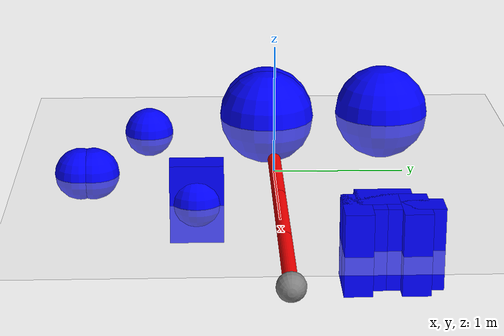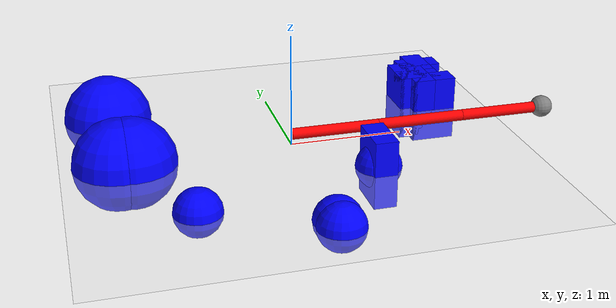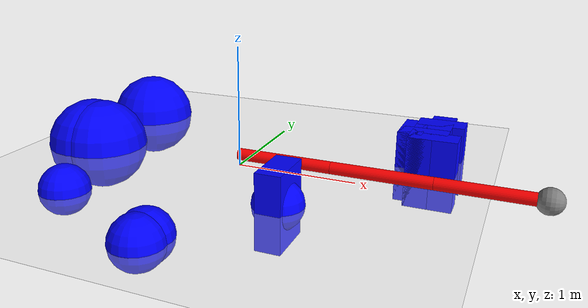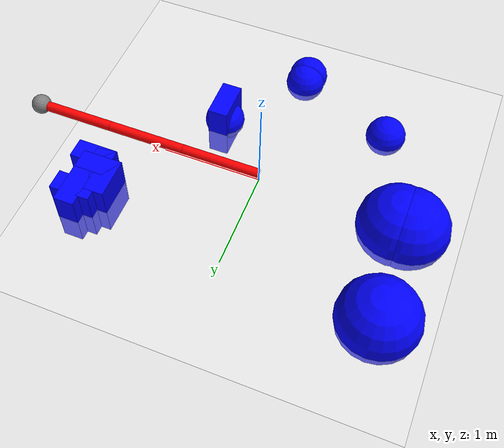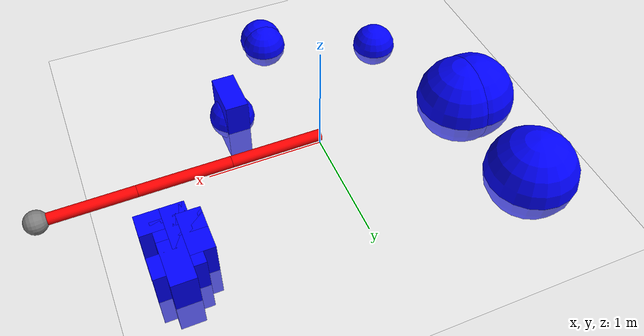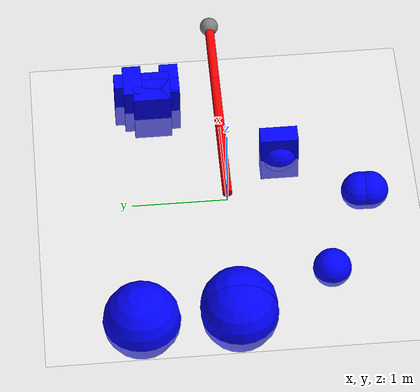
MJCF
<mujoco>
	<asset>
		<material name="red"   rgba="1 0 0 1"/>
		<material name="green" rgba="0 1 0 1"/>
		<material name="blue"  rgba="0 0 1 1"/>
		<material name="white" rgba="1 1 1 1"/>
		<material name="gray"  rgba=".5 .5 .5 1"/>
	</asset>

    <option collision="predefined"/>

    <worldbody>
        <light diffuse=".5 .5 .5" pos="0 0 10" dir="0 0 -1"/>
        <geom type="plane" size="2 2 0.1" rgba="1 1 1 1"/>

        <body name="edge 0" pos="0.4 0 0.1" euler="0 90 0">
            <joint name="joint 0" type="hinge" axis="-1 0 0" pos="0 0 -0.4"/>
            <geom name="geom edge 0" type="cylinder" size="0.05 0.4" material="red"/>
            <body name="edge 1" pos="0 0 0.8" euler="0 0 0">
                <joint name="joint 1" type="hinge" axis="-1 0 0" pos="0 0 -0.4"/>
                <geom name="geom edge 1" type="cylinder" size="0.05 0.4" material="red"/>
                <body name="edge 2" pos="0 0 0.8" euler="0 0 0">
                    <joint name="joint 2" type="hinge" axis="-1 0 0" pos="0 0 -0.4"/>
                    <geom name="geom edge 2" type="cylinder" size="0.05 0.4" material="red"/>
                    <site name="tip" size="0.1" pos="0 0 0.4"/>
                </body>
            </body>
        </body>

        <body name="edge 0 shade" pos="0.4 0 0.1" euler="0 90 0">
            <joint name="joint 0 shade" type="hinge" axis="-1 0 0" pos="0 0 -0.4"/>
            <geom name="geom edge 0 shade" type="cylinder" size="0.05 0.4" material="green"/>
            <body name="edge 1 shade" pos="0 0 0.8" euler="0 0 0">
                <joint name="joint 1 shade" type="hinge" axis="-1 0 0" pos="0 0 -0.4"/>
                <geom name="geom edge 1 shade" type="cylinder" size="0.05 0.4" material="green"/>
                <body name="edge 2 shade" pos="0 0 0.8" euler="0 0 0">
                    <joint name="joint 2 shade" type="hinge" axis="-1 0 0" pos="0 0 -0.4"/>
                    <geom name="geom edge 2 shade" type="cylinder" size="0.05 0.4" material="green"/>
                </body>
            </body>
        </body>

        <body name="obstacle 0">
            <geom name="geom obstacle 0" type="box" size="0.1 0.2 0.3" pos="1.5 0.9 0.0" material="blue"/>
        </body>
        <body name="obstacle 1">
            <geom name="geom obstacle 1" type="sphere" size="0.2" pos="0.0 -1.5 0.0" material="blue"/>
        </body>
        <body name="obstacle 2">
            <geom name="geom obstacle 2" type="sphere" size="0.4" pos="-1.5 0.0 0.0" material="blue"/>
        </body>
        <body name="obstacle 3">
            <geom name="geom obstacle 3" type="box" size="0.2 0.1 0.3" pos="1.5 0.9 0.0" material="blue"/>
        </body>
        <body name="obstacle 4">
            <geom name="geom obstacle 4" type="box" size="0.1 0.2 0.3" pos="1.3 0.7 0.0" material="blue"/>
        </body>
        <body name="obstacle 5">
            <geom name="geom obstacle 5" type="sphere" size="0.2" pos="0.0 -1.4 0.0" material="blue"/>
        </body>
        <body name="obstacle 6">
            <geom name="geom obstacle 6" type="sphere" size="0.4" pos="-1.4 0.0 0.0" material="blue"/>
        </body>
        <body name="obstacle 7">
            <geom name="geom obstacle 7" type="box" size="0.2 0.1 0.3" pos="1.4 0.6 0.0" material="blue"/>
        </body>
        <body name="obstacle 8">
            <geom name="geom obstacle 8" type="box" size="0.1 0.2 0.3" pos="0.6 -0.6 0.0" material="blue"/>
        </body>
        <body name="obstacle 9">
            <geom name="geom obstacle 9" type="sphere" size="0.2" pos="-1.0 -1.0 0.0" material="blue"/>
        </body>
        <body name="obstacle 10">
            <geom name="geom obstacle 10" type="sphere" size="0.4" pos="-1.5 1.0 0.0" material="blue"/>
        </body>
        <body name="obstacle 11">
            <geom name="geom obstacle 11" type="box" size="0.2 0.1 0.3" pos="1.5 0.5 0.0" material="blue"/>
        </body>
        <body name="obstacle 12">
            <geom name="geom obstacle 12" type="box" size="0.1 0.2 0.3" pos="1.4 0.6 0.0" material="blue"/>
        </body>
        <body name="obstacle 13">
            <geom name="geom obstacle 13" type="sphere" size="0.2" pos="0.6 -0.6 0.0" material="blue"/>
        </body>
        <body name="obstacle 14">
            <geom name="geom obstacle 14" type="sphere" size="0.4" pos="-1.4 0.0 0.0" material="blue"/>
        </body>
        <body name="obstacle 15">
            <geom name="geom obstacle 15" type="box" size="0.2 0.1 0.3" pos="1.4 0.6 0.0" material="blue"/>
        </body>

    </worldbody>

    <contact>
        <pair geom1="geom edge 0" geom2="geom obstacle 0"/>
        <pair geom1="geom edge 0" geom2="geom obstacle 1"/>
        <pair geom1="geom edge 0" geom2="geom obstacle 2"/>
        <pair geom1="geom edge 0" geom2="geom obstacle 3"/>
        <pair geom1="geom edge 0" geom2="geom obstacle 4"/>
        <pair geom1="geom edge 0" geom2="geom obstacle 5"/>
        <pair geom1="geom edge 0" geom2="geom obstacle 6"/>
        <pair geom1="geom edge 0" geom2="geom obstacle 7"/>
        <pair geom1="geom edge 0" geom2="geom obstacle 8"/>
        <pair geom1="geom edge 0" geom2="geom obstacle 9"/>
        <pair geom1="geom edge 0" geom2="geom obstacle 10"/>
        <pair geom1="geom edge 0" geom2="geom obstacle 11"/>
        <pair geom1="geom edge 0" geom2="geom obstacle 12"/>
        <pair geom1="geom edge 0" geom2="geom obstacle 13"/>
        <pair geom1="geom edge 0" geom2="geom obstacle 14"/>
        <pair geom1="geom edge 0" geom2="geom obstacle 15"/>
        <pair geom1="geom edge 1" geom2="geom obstacle 0"/>
        <pair geom1="geom edge 1" geom2="geom obstacle 1"/>
        <pair geom1="geom edge 1" geom2="geom obstacle 2"/>
        <pair geom1="geom edge 1" geom2="geom obstacle 3"/>
        <pair geom1="geom edge 1" geom2="geom obstacle 4"/>
        <pair geom1="geom edge 1" geom2="geom obstacle 5"/>
        <pair geom1="geom edge 1" geom2="geom obstacle 6"/>
        <pair geom1="geom edge 1" geom2="geom obstacle 7"/>
        <pair geom1="geom edge 1" geom2="geom obstacle 8"/>
        <pair geom1="geom edge 1" geom2="geom obstacle 9"/>
        <pair geom1="geom edge 1" geom2="geom obstacle 10"/>
        <pair geom1="geom edge 1" geom2="geom obstacle 11"/>
        <pair geom1="geom edge 1" geom2="geom obstacle 12"/>
        <pair geom1="geom edge 1" geom2="geom obstacle 13"/>
        <pair geom1="geom edge 1" geom2="geom obstacle 14"/>
        <pair geom1="geom edge 1" geom2="geom obstacle 15"/>
        <pair geom1="geom edge 2" geom2="geom obstacle 0"/>
        <pair geom1="geom edge 2" geom2="geom obstacle 1"/>
        <pair geom1="geom edge 2" geom2="geom obstacle 2"/>
        <pair geom1="geom edge 2" geom2="geom obstacle 3"/>
        <pair geom1="geom edge 2" geom2="geom obstacle 4"/>
        <pair geom1="geom edge 2" geom2="geom obstacle 5"/>
        <pair geom1="geom edge 2" geom2="geom obstacle 6"/>
        <pair geom1="geom edge 2" geom2="geom obstacle 7"/>
        <pair geom1="geom edge 2" geom2="geom obstacle 8"/>
        <pair geom1="geom edge 2" geom2="geom obstacle 9"/>
        <pair geom1="geom edge 2" geom2="geom obstacle 10"/>
        <pair geom1="geom edge 2" geom2="geom obstacle 11"/>
        <pair geom1="geom edge 2" geom2="geom obstacle 12"/>
        <pair geom1="geom edge 2" geom2="geom obstacle 13"/>
        <pair geom1="geom edge 2" geom2="geom obstacle 14"/>
        <pair geom1="geom edge 2" geom2="geom obstacle 15"/>
        <pair geom1="geom edge 0" geom2="geom edge 2"/>
    </contact>

    <sensor>
      <framepos objtype="site" objname="tip"/>
    </sensor>
</mujoco>
